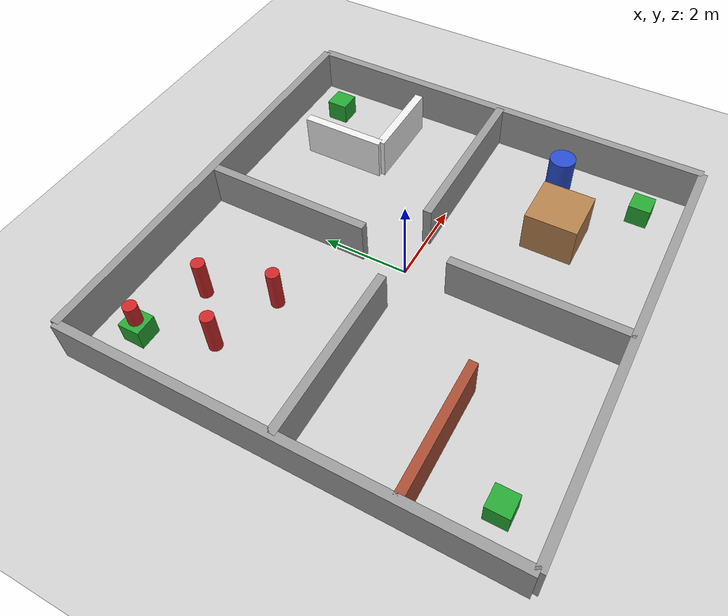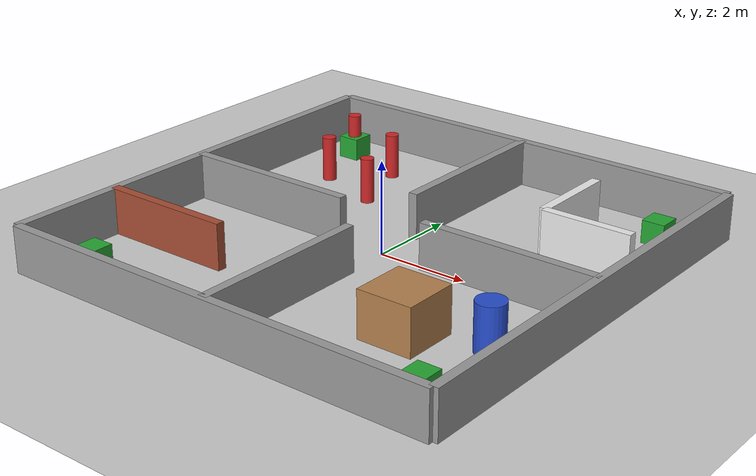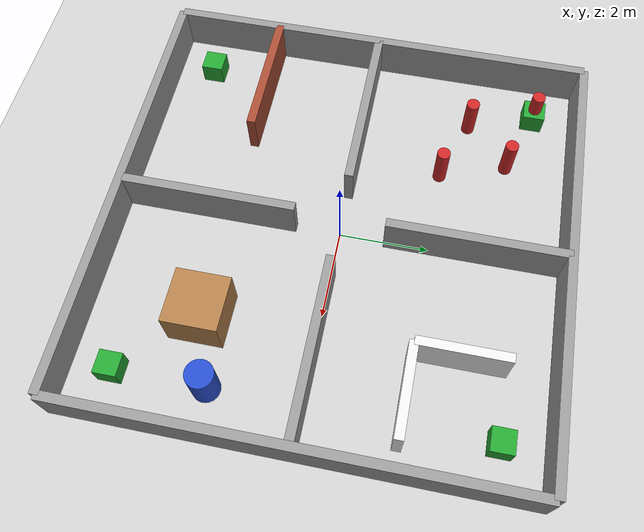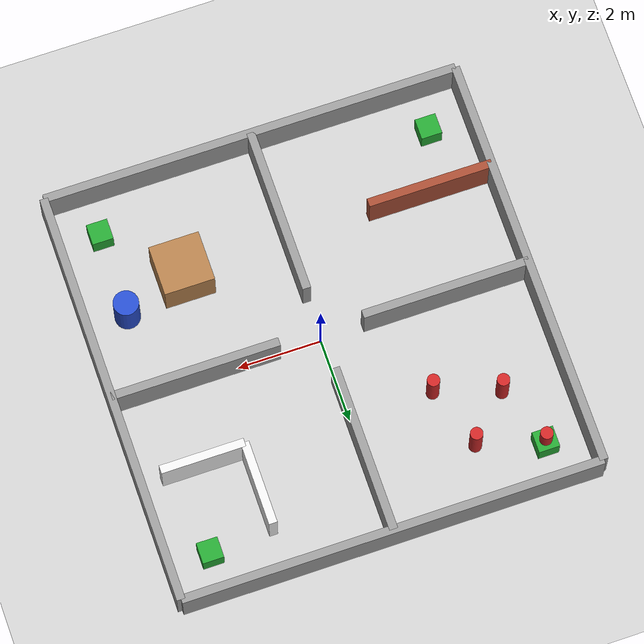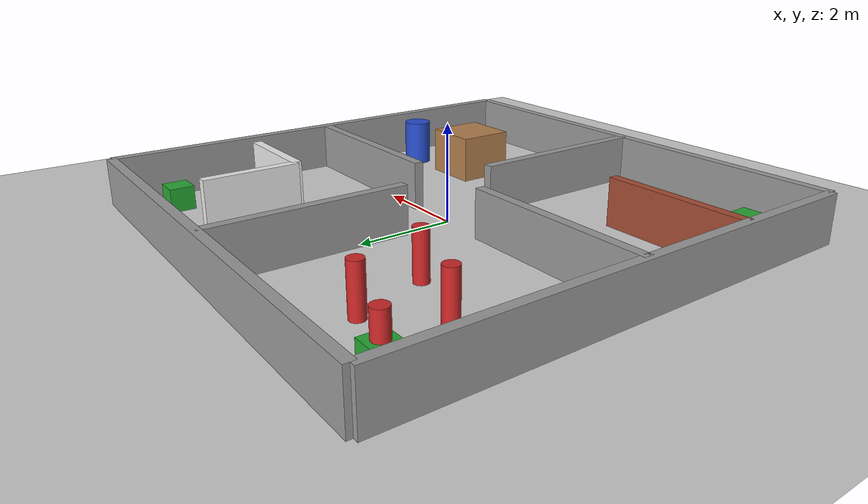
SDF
<?xml version="1.0" ?>
<sdf version="1.5">
  <world name="four_rooms_world_complex">
    <include><uri>model://sun</uri></include>
    <include><uri>model://ground_plane</uri></include>

    <model name="wall_top"><static>true</static><pose>0 5 0.5 0 0 0</pose><link name="link"><collision name="c"><geometry><box><size>10 0.2 1</size></box></geometry></collision><visual name="v"><geometry><box><size>10 0.2 1</size></box></geometry><material><script><uri>file://media/materials/scripts/gazebo.material</uri><name>Gazebo/Grey</name></script></material></visual></link></model>
    <model name="wall_bottom"><static>true</static><pose>0 -5 0.5 0 0 0</pose><link name="link"><collision name="c"><geometry><box><size>10 0.2 1</size></box></geometry></collision><visual name="v"><geometry><box><size>10 0.2 1</size></box></geometry><material><script><uri>file://media/materials/scripts/gazebo.material</uri><name>Gazebo/Grey</name></script></material></visual></link></model>
    <model name="wall_left"><static>true</static><pose>-5 0 0.5 0 0 0</pose><link name="link"><collision name="c"><geometry><box><size>0.2 10 1</size></box></geometry></collision><visual name="v"><geometry><box><size>0.2 10 1</size></box></geometry><material><script><uri>file://media/materials/scripts/gazebo.material</uri><name>Gazebo/Grey</name></script></material></visual></link></model>
    <model name="wall_right"><static>true</static><pose>5 0 0.5 0 0 0</pose><link name="link"><collision name="c"><geometry><box><size>0.2 10 1</size></box></geometry></collision><visual name="v"><geometry><box><size>0.2 10 1</size></box></geometry><material><script><uri>file://media/materials/scripts/gazebo.material</uri><name>Gazebo/Grey</name></script></material></visual></link></model>

    <model name="wall_inner_top"><static>true</static><pose>0 3 0.5 0 0 0</pose><link name="link"><collision name="c"><geometry><box><size>0.2 4 1</size></box></geometry></collision><visual name="v"><geometry><box><size>0.2 4 1</size></box></geometry><material><script><uri>file://media/materials/scripts/gazebo.material</uri><name>Gazebo/Grey</name></script></material></visual></link></model>
    <model name="wall_inner_bottom"><static>true</static><pose>0 -3 0.5 0 0 0</pose><link name="link"><collision name="c"><geometry><box><size>0.2 4 1</size></box></geometry></collision><visual name="v"><geometry><box><size>0.2 4 1</size></box></geometry><material><script><uri>file://media/materials/scripts/gazebo.material</uri><name>Gazebo/Grey</name></script></material></visual></link></model>
    <model name="wall_inner_left"><static>true</static><pose>-3 0 0.5 0 0 0</pose><link name="link"><collision name="c"><geometry><box><size>4 0.2 1</size></box></geometry></collision><visual name="v"><geometry><box><size>4 0.2 1</size></box></geometry><material><script><uri>file://media/materials/scripts/gazebo.material</uri><name>Gazebo/Grey</name></script></material></visual></link></model>
    <model name="wall_inner_right"><static>true</static><pose>3 0 0.5 0 0 0</pose><link name="link"><collision name="c"><geometry><box><size>4 0.2 1</size></box></geometry></collision><visual name="v"><geometry><box><size>4 0.2 1</size></box></geometry><material><script><uri>file://media/materials/scripts/gazebo.material</uri><name>Gazebo/Grey</name></script></material></visual></link></model>

    <model name="r1_wall_h"><static>true</static><pose>3.5 2.0 0.5 0 0 0</pose><link name="link"><collision name="c"><geometry><box><size>2 0.2 1</size></box></geometry></collision><visual name="v"><geometry><box><size>2 0.2 1</size></box></geometry><material><script><uri>file://media/materials/scripts/gazebo.material</uri><name>Gazebo/White</name></script></material></visual></link></model>
    <model name="r1_wall_v"><static>true</static><pose>2.5 3.0 0.5 0 0 0</pose><link name="link"><collision name="c"><geometry><box><size>0.2 2 1</size></box></geometry></collision><visual name="v"><geometry><box><size>0.2 2 1</size></box></geometry><material><script><uri>file://media/materials/scripts/gazebo.material</uri><name>Gazebo/White</name></script></material></visual></link></model>

    <model name="r2_p1"><static>true</static><pose>-2.0 2.0 0.5 0 0 0</pose><link name="link"><collision name="c"><geometry><cylinder><radius>0.15</radius><length>1</length></cylinder></geometry></collision><visual name="v"><geometry><cylinder><radius>0.15</radius><length>1</length></cylinder></geometry><material><script><uri>file://media/materials/scripts/gazebo.material</uri><name>Gazebo/Red</name></script></material></visual></link></model>
    <model name="r2_p2"><static>true</static><pose>-3.5 2.5 0.5 0 0 0</pose><link name="link"><collision name="c"><geometry><cylinder><radius>0.15</radius><length>1</length></cylinder></geometry></collision><visual name="v"><geometry><cylinder><radius>0.15</radius><length>1</length></cylinder></geometry><material><script><uri>file://media/materials/scripts/gazebo.material</uri><name>Gazebo/Red</name></script></material></visual></link></model>
    <model name="r2_p3"><static>true</static><pose>-2.5 3.5 0.5 0 0 0</pose><link name="link"><collision name="c"><geometry><cylinder><radius>0.15</radius><length>1</length></cylinder></geometry></collision><visual name="v"><geometry><cylinder><radius>0.15</radius><length>1</length></cylinder></geometry><material><script><uri>file://media/materials/scripts/gazebo.material</uri><name>Gazebo/Red</name></script></material></visual></link></model>
    <model name="r2_p4"><static>true</static><pose>-4.0 4.0 0.5 0 0 0</pose><link name="link"><collision name="c"><geometry><cylinder><radius>0.15</radius><length>1</length></cylinder></geometry></collision><visual name="v"><geometry><cylinder><radius>0.15</radius><length>1</length></cylinder></geometry><material><script><uri>file://media/materials/scripts/gazebo.material</uri><name>Gazebo/Red</name></script></material></visual></link></model>

    <model name="r3_long_wall"><static>true</static><pose>-3.5 -2.5 0.5 0 0 0</pose><link name="link"><collision name="c"><geometry><box><size>3 0.2 1</size></box></geometry></collision><visual name="v"><geometry><box><size>3 0.2 1</size></box></geometry><material><script><uri>file://media/materials/scripts/gazebo.material</uri><name>Gazebo/Bricks</name></script></material></visual></link></model>

    <model name="r4_box"><static>true</static><pose>2.5 -2.5 0.5 0 0 0</pose><link name="link"><collision name="c"><geometry><box><size>1.2 1.2 1</size></box></geometry></collision><visual name="v"><geometry><box><size>1.2 1.2 1</size></box></geometry><material><script><uri>file://media/materials/scripts/gazebo.material</uri><name>Gazebo/Wood</name></script></material></visual></link></model>
    <model name="r4_cylinder"><static>true</static><pose>4.0 -2.0 0.5 0 0 0</pose><link name="link"><collision name="c"><geometry><cylinder><radius>0.3</radius><length>1</length></cylinder></geometry></collision><visual name="v"><geometry><cylinder><radius>0.3</radius><length>1</length></cylinder></geometry><material><script><uri>file://media/materials/scripts/gazebo.material</uri><name>Gazebo/Blue</name></script></material></visual></link></model>

    <model name="green_box_1"><static>true</static><pose>4.0 4.0 0.25 0 0 0</pose><link name="link"><collision name="c"><geometry><box><size>0.5 0.5 0.5</size></box></geometry></collision><visual name="v"><geometry><box><size>0.5 0.5 0.5</size></box></geometry><material><script><uri>file://media/materials/scripts/gazebo.material</uri><name>Gazebo/Green</name></script></material></visual></link></model>
    <model name="green_box_2"><static>true</static><pose>-4.0 4.0 0.25 0 0 0</pose><link name="link"><collision name="c"><geometry><box><size>0.5 0.5 0.5</size></box></geometry></collision><visual name="v"><geometry><box><size>0.5 0.5 0.5</size></box></geometry><material><script><uri>file://media/materials/scripts/gazebo.material</uri><name>Gazebo/Green</name></script></material></visual></link></model>
    <model name="green_box_3"><static>true</static><pose>-4.0 -4.0 0.25 0 0 0</pose><link name="link"><collision name="c"><geometry><box><size>0.5 0.5 0.5</size></box></geometry></collision><visual name="v"><geometry><box><size>0.5 0.5 0.5</size></box></geometry><material><script><uri>file://media/materials/scripts/gazebo.material</uri><name>Gazebo/Green</name></script></material></visual></link></model>
    <model name="green_box_4"><static>true</static><pose>4.0 -4.0 0.25 0 0 0</pose><link name="link"><collision name="c"><geometry><box><size>0.5 0.5 0.5</size></box></geometry></collision><visual name="v"><geometry><box><size>0.5 0.5 0.5</size></box></geometry><material><script><uri>file://media/materials/scripts/gazebo.material</uri><name>Gazebo/Green</name></script></material></visual></link></model>
  </world>
</sdf>
